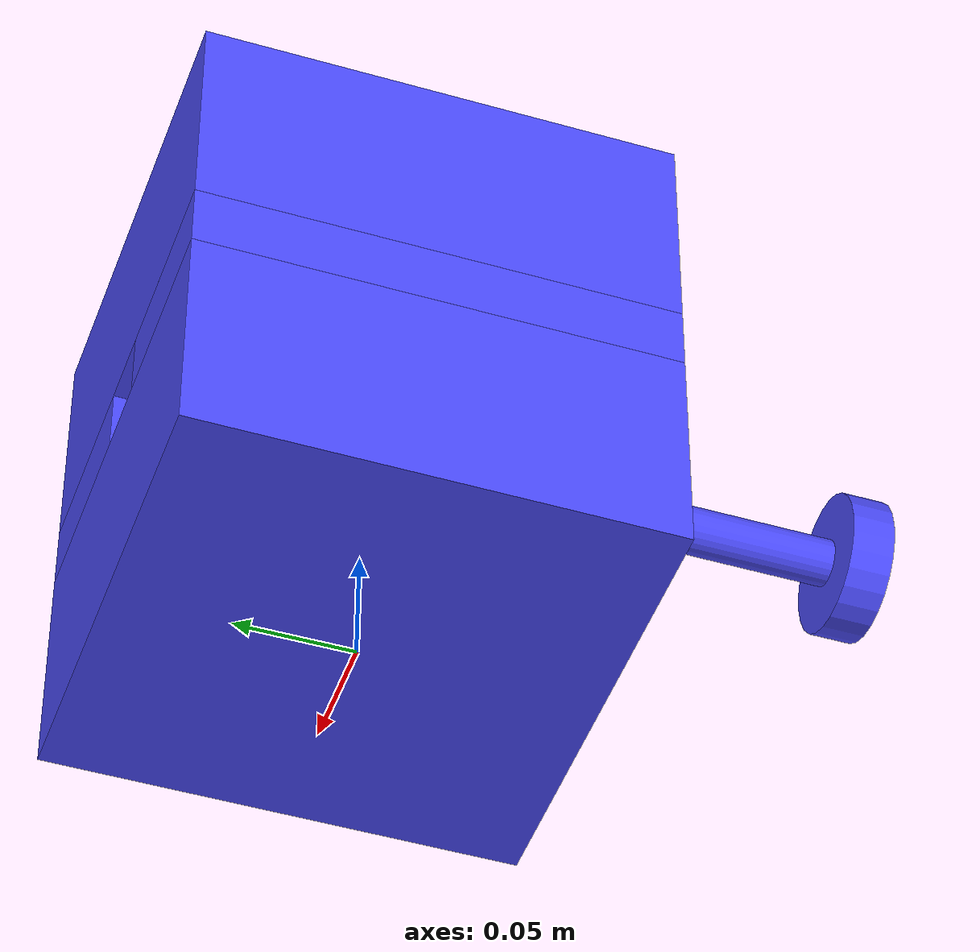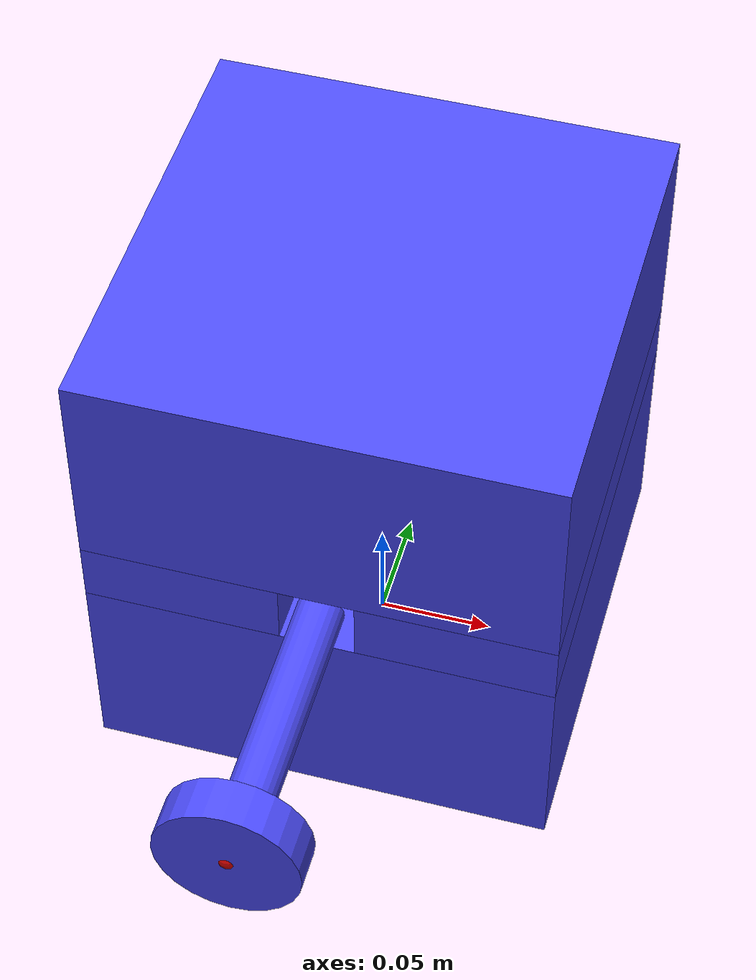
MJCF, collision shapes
<mujoco>
    <compiler angle="radian" inertiafromgeom="auto" inertiagrouprange="4 5"/>
    <asset>
        <texture name="T_hmr_met" type="cube" file="../textures/metal1.png"/>
        <texture name="T_hmr_wood" type="cube" file="../textures/wood1.png"/>

        <material name="hmr_col" rgba="0.3 0.3 1.0 0.5" shininess="0" specular="0"/>
        <material name="hmr_red" rgba=".65 0 0 1" shininess="1" reflectance=".7" specular=".5"/>
        <material name="hmr_metal" texture="T_hmr_met" rgba=".65 .65 .65 1" shininess="1" reflectance=".7" specular=".5"/>
        <material name="hmr_wood" texture="T_hmr_wood" shininess="1" reflectance=".7" specular=".5"/>

        <mesh file="../objects/meshes/hammer/hammerblock.stl" name="hammerblock"/>
        <mesh file="../objects/meshes/hammer/nail.stl" name="nail"/>
        <mesh file="../objects/meshes/hammer/hammerhandle.stl" name="hammerhandle"/>

    </asset>

    <default>

      <default class="hmr_base">
          <joint armature="0.001" damping="2" limited="true"/>
          <geom conaffinity="0" contype="0" group="1" type="mesh"/>
          <position ctrllimited="true" ctrlrange="0 1.57"/>
          <default class="hmr_viz">
              <geom condim="4" type="mesh"/>
          </default>
          <default class="hmr_col">
              <geom conaffinity="1" condim="3" contype="1" group="4" material="hmr_col" solimp="0.99 0.99 0.01" solref="0.01 1"/>
          </default>
      </default>
    </default>

    <worldbody>
        <body name="box" pos="0 0 0">
            <body childclass="hmr_base" name="hammerblock">
                <geom material="hmr_red" mesh="hammerblock" pos="0 0 0.11"/>
                <geom class="hmr_col" pos="0 0 0.172" size="0.1 0.1 0.048" type="box"/>
                <geom class="hmr_col" pos="0.058 0 0.11" size="0.042 0.1 0.014" type="box"/>
                <geom class="hmr_col" pos="-0.058 0 0.11" size="0.042 0.1 0.014" type="box"/>
                <geom class="hmr_col" pos="0 0 0.048" size="0.1 0.1 0.048" type="box"/>
                <body name="nail_link" pos="0 -0.21 0.11">
                    <joint type="slide" axis="0 1 0" range="0 .1" name="NailSlideJoint"/>
                    <geom material="hmr_metal" euler="1.57 0 0" mesh="nail" pos="-0.0 0.057 0"/>
                    <geom class="hmr_col" euler="1.57 0 0" pos="0.0 0.057 0" size="0.01 0.06" type="cylinder"/>
                    <geom class="hmr_col" euler="1.57 0 0" size="0.03 0.009" type="cylinder"/>
                </body>
                <body name="target" pos="0 -0.11 0.11"></body>
            </body>
          <site name="nailHead" pos="0 -.215 .11" size="0.005" rgba="0.8 0 0 1"/>
        </body>
    </worldbody>
</mujoco>
